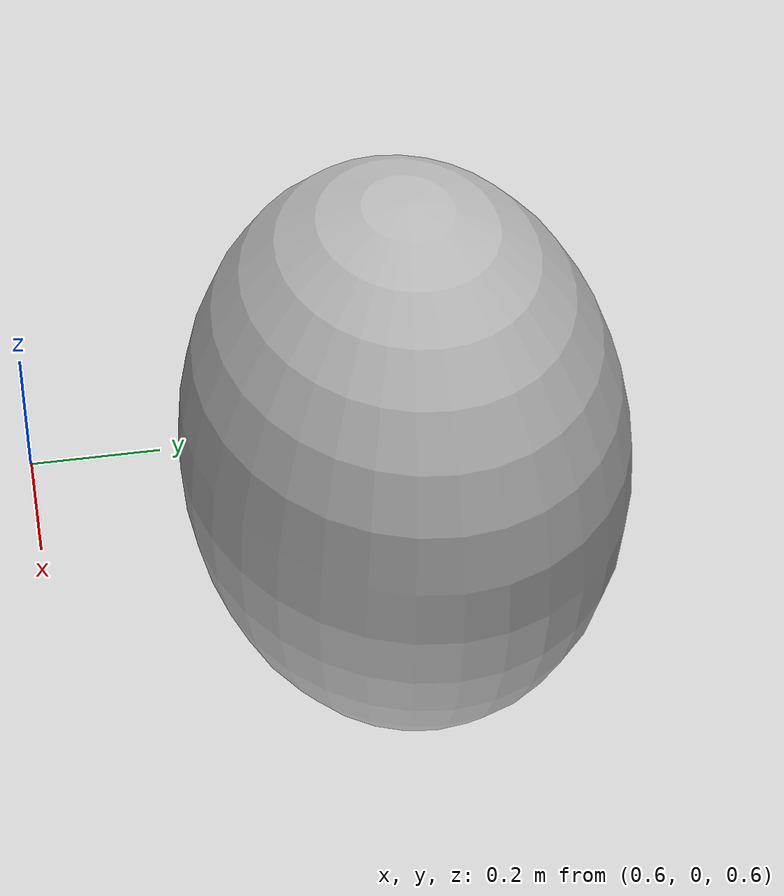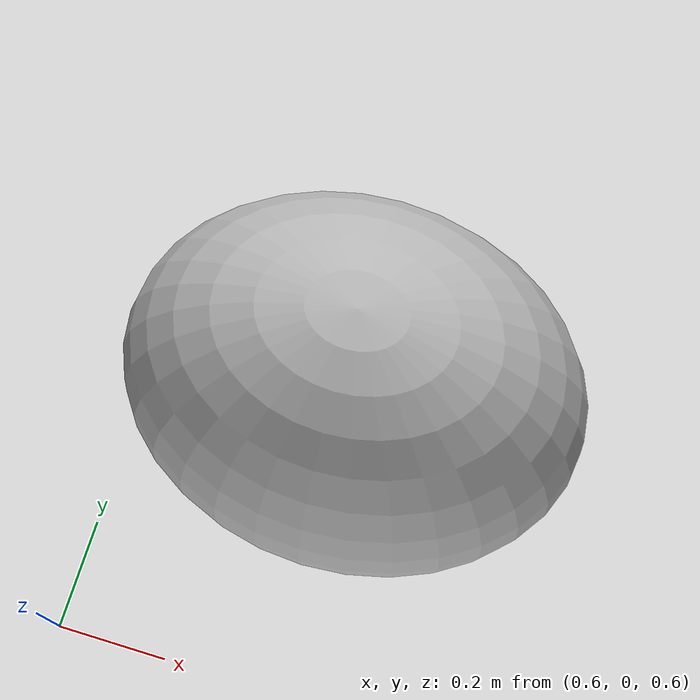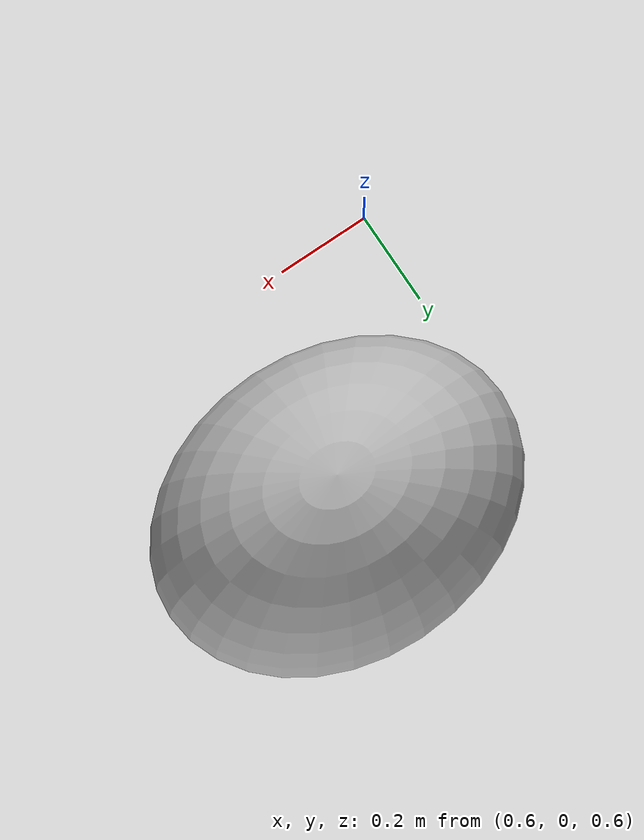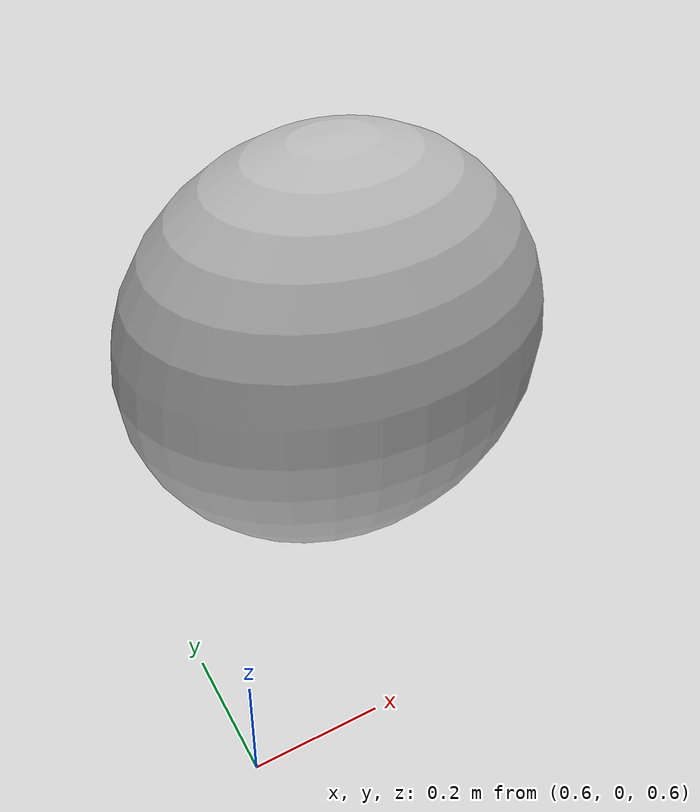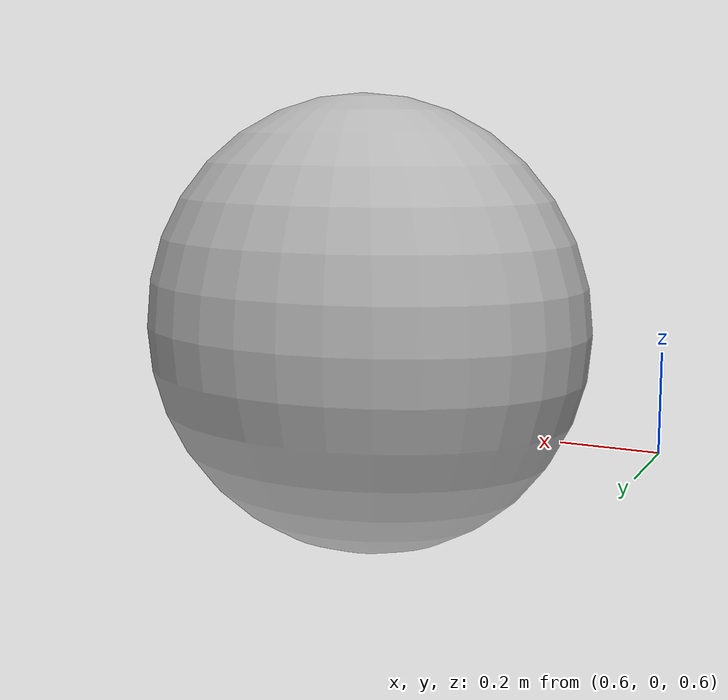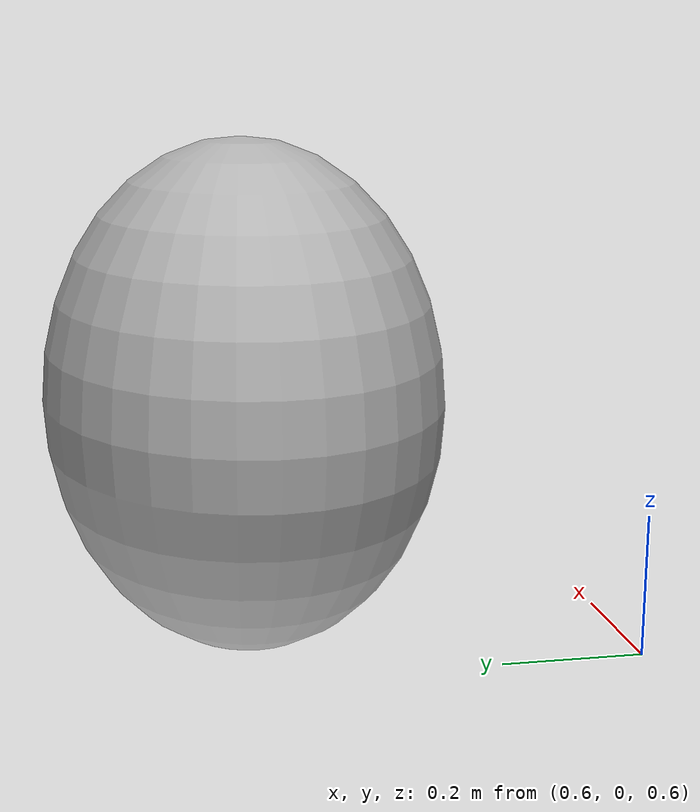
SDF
<?xml version="1.0" ?>
<sdf version="1.4">
  <model name="ellipsoid_dummy">
    <pose>1.0 0.5 0.9 0 0 0</pose>
    <static>1</static>
    <link name="ellipsoid_dummy_link">
      <collision name="ellipsoid_dummy_link_collision">
	<geometry>
	    <box>
	       <size>0.45 0.35 0.45</size>
            </box>
	</geometry>
	<surface>
	   <contact>
	      <ode/>
	   </contact>
	   <friction>
	      <ode/>
	   </friction>
	</surface>
      </collision>
      <visual name="ellipsoid_dummy_visual">
        <geometry>
	   <mesh>
	     <uri>model://ellipsoid_nmpc/meshes/obs2_check.stl</uri>
             <scale>1 1 1</scale>
	   </mesh>
        </geometry>
      </visual>
      <self_collide>0</self_collide>
    </link>
  </model>
</sdf>
